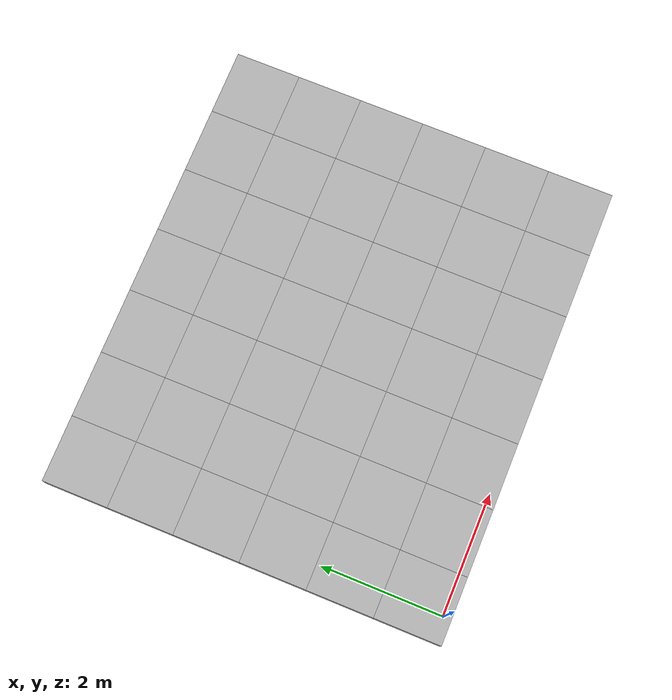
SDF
<?xml version='1.0'?>

<sdf version='1.4'>
  <model name="canopy">
	  <static>true</static>
 		<!-- Leaves in the canopy (around vines). -->

		<include>
			<pose>0.0 0.5 1.85 0 0 0</pose>
			<uri>model://leaf</uri>
		</include>

		<include>
			<pose>0.0 1.5 1.85 0 0 0</pose>
			<uri>model://leaf</uri>
		</include>

		<include>
			<pose>0.0 2.5 1.85 0 0 0</pose>
			<uri>model://leaf</uri>
		</include>

		<include>
			<pose>0.0 3.5 1.85 0 0 0</pose>
			<uri>model://leaf</uri>
		</include>

		<include>
			<pose>0.0 4.5 1.85 0 0 0</pose>
			<uri>model://leaf</uri>
		</include>

		<include>
			<pose>0.0 5.5 1.85 0 0 0</pose>
			<uri>model://leaf</uri>
		</include>

		<include>
			<pose>1.0 0.5 1.85 0 0 0</pose>
			<uri>model://leaf</uri>
		</include>

		<include>
			<pose>1.0 1.5 1.85 0 0 0</pose>
			<uri>model://leaf</uri>
		</include>

		<include>
			<pose>1.0 2.5 1.85 0 0 0</pose>
			<uri>model://leaf</uri>
		</include>

		<include>
			<pose>1.0 3.5 1.85 0 0 0</pose>
			<uri>model://leaf</uri>
		</include>

		<include>
			<pose>1.0 4.5 1.85 0 0 0</pose>
			<uri>model://leaf</uri>
		</include>

		<include>
			<pose>1.0 5.5 1.85 0 0 0</pose>
			<uri>model://leaf</uri>
		</include>

		<include>
			<pose>2.0 0.5 1.85 0 0 0</pose>
			<uri>model://leaf</uri>
		</include>

		<include>
			<pose>2.0 1.5 1.85 0 0 0</pose>
			<uri>model://leaf</uri>
		</include>

		<include>
			<pose>2.0 2.5 1.85 0 0 0</pose>
			<uri>model://leaf</uri>
		</include>

		<include>
			<pose>2.0 3.5 1.85 0 0 0</pose>
			<uri>model://leaf</uri>
		</include>

		<include>
			<pose>2.0 4.5 1.85 0 0 0</pose>
			<uri>model://leaf</uri>
		</include>

		<include>
			<pose>2.0 5.5 1.85 0 0 0</pose>
			<uri>model://leaf</uri>
		</include>

		<include>
			<pose>3.0 0.5 1.85 0 0 0</pose>
			<uri>model://leaf</uri>
		</include>

		<include>
			<pose>3.0 1.5 1.85 0 0 0</pose>
			<uri>model://leaf</uri>
		</include>

		<include>
			<pose>3.0 2.5 1.85 0 0 0</pose>
			<uri>model://leaf</uri>
		</include>

		<include>
			<pose>3.0 3.5 1.85 0 0 0</pose>
			<uri>model://leaf</uri>
		</include>

		<include>
			<pose>3.0 4.5 1.85 0 0 0</pose>
			<uri>model://leaf</uri>
		</include>

		<include>
			<pose>3.0 5.5 1.85 0 0 0</pose>
			<uri>model://leaf</uri>
		</include>

		<include>
			<pose>4.0 0.5 1.85 0 0 0</pose>
			<uri>model://leaf</uri>
		</include>

		<include>
			<pose>4.0 1.5 1.85 0 0 0</pose>
			<uri>model://leaf</uri>
		</include>

		<include>
			<pose>4.0 2.5 1.85 0 0 0</pose>
			<uri>model://leaf</uri>
		</include>

		<include>
			<pose>4.0 3.5 1.85 0 0 0</pose>
			<uri>model://leaf</uri>
		</include>

		<include>
			<pose>4.0 4.5 1.85 0 0 0</pose>
			<uri>model://leaf</uri>
		</include>

		<include>
			<pose>4.0 5.5 1.85 0 0 0</pose>
			<uri>model://leaf</uri>
		</include>

		<include>
			<pose>5.0 0.5 1.85 0 0 0</pose>
			<uri>model://leaf</uri>
		</include>

		<include>
			<pose>5.0 1.5 1.85 0 0 0</pose>
			<uri>model://leaf</uri>
		</include>

		<include>
			<pose>5.0 2.5 1.85 0 0 0</pose>
			<uri>model://leaf</uri>
		</include>

		<include>
			<pose>5.0 3.5 1.85 0 0 0</pose>
			<uri>model://leaf</uri>
		</include>

		<include>
			<pose>5.0 4.5 1.85 0 0 0</pose>
			<uri>model://leaf</uri>
		</include>

		<include>
			<pose>5.0 5.5 1.85 0 0 0</pose>
			<uri>model://leaf</uri>
		</include>

		<include>
			<pose>6.0 0.5 1.85 0 0 0</pose>
			<uri>model://leaf</uri>
		</include>

		<include>
			<pose>6.0 1.5 1.85 0 0 0</pose>
			<uri>model://leaf</uri>
		</include>

		<include>
			<pose>6.0 2.5 1.85 0 0 0</pose>
			<uri>model://leaf</uri>
		</include>

		<include>
			<pose>6.0 3.5 1.85 0 0 0</pose>
			<uri>model://leaf</uri>
		</include>

		<include>
			<pose>6.0 4.5 1.85 0 0 0</pose>
			<uri>model://leaf</uri>
		</include>

		<include>
			<pose>6.0 5.5 1.85 0 0 0</pose>
			<uri>model://leaf</uri>
		</include>

  </model>
</sdf>

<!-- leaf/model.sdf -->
<sdf version='1.4'>
  <model name="leaf">
	<static>true</static>
        <link name="leaf">
          <pose>0 0 0 0 0 0</pose>
          <visual name="visual">
            <geometry><box><size>1 1 0.3</size></box></geometry>
            <material><script><uri>model://leaf/materials/scripts</uri>
            <uri>model://leaf/materials/textures</uri>
            <name>Leaf/Single</name></script></material>
          </visual>
        </link>
    </model>
</sdf>
